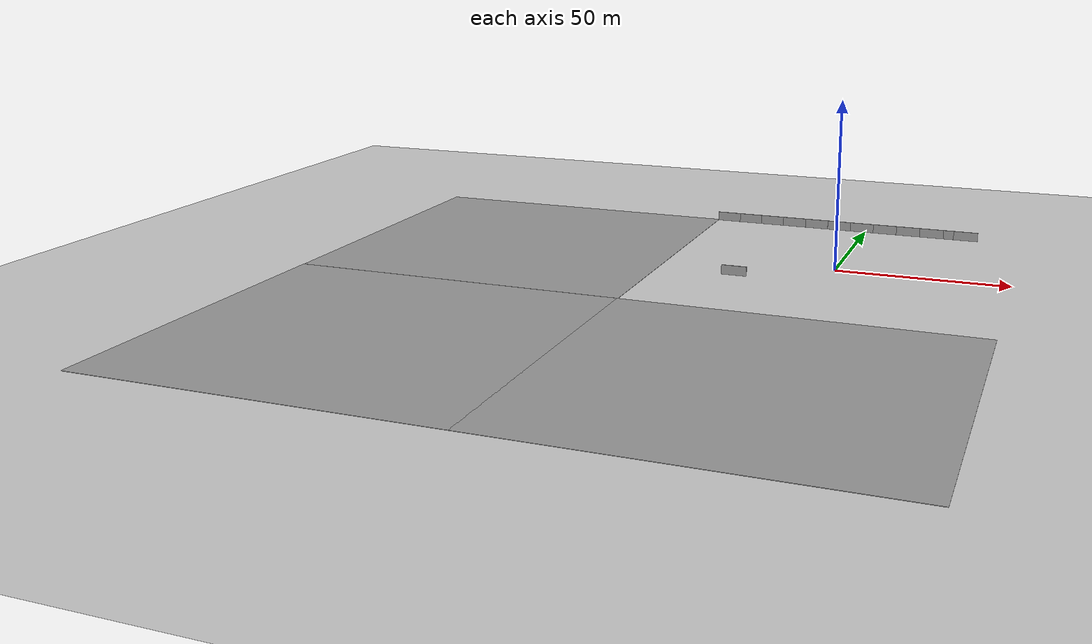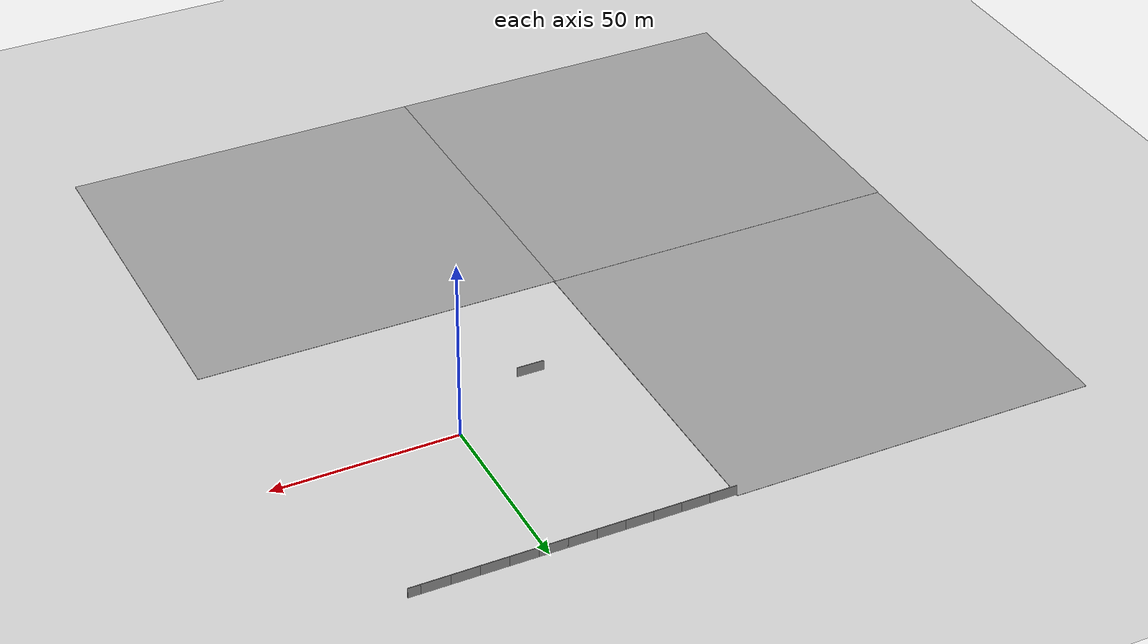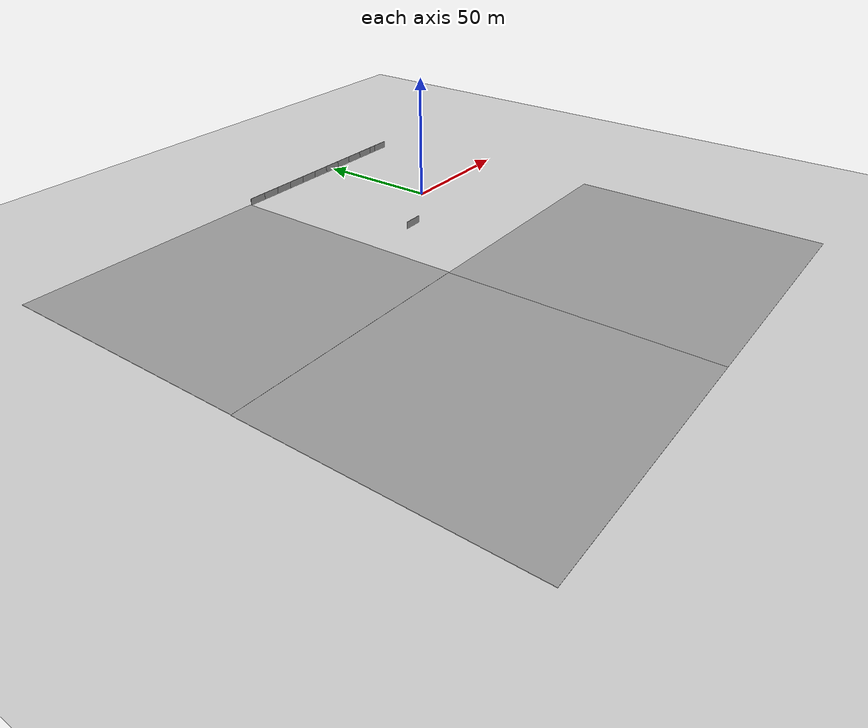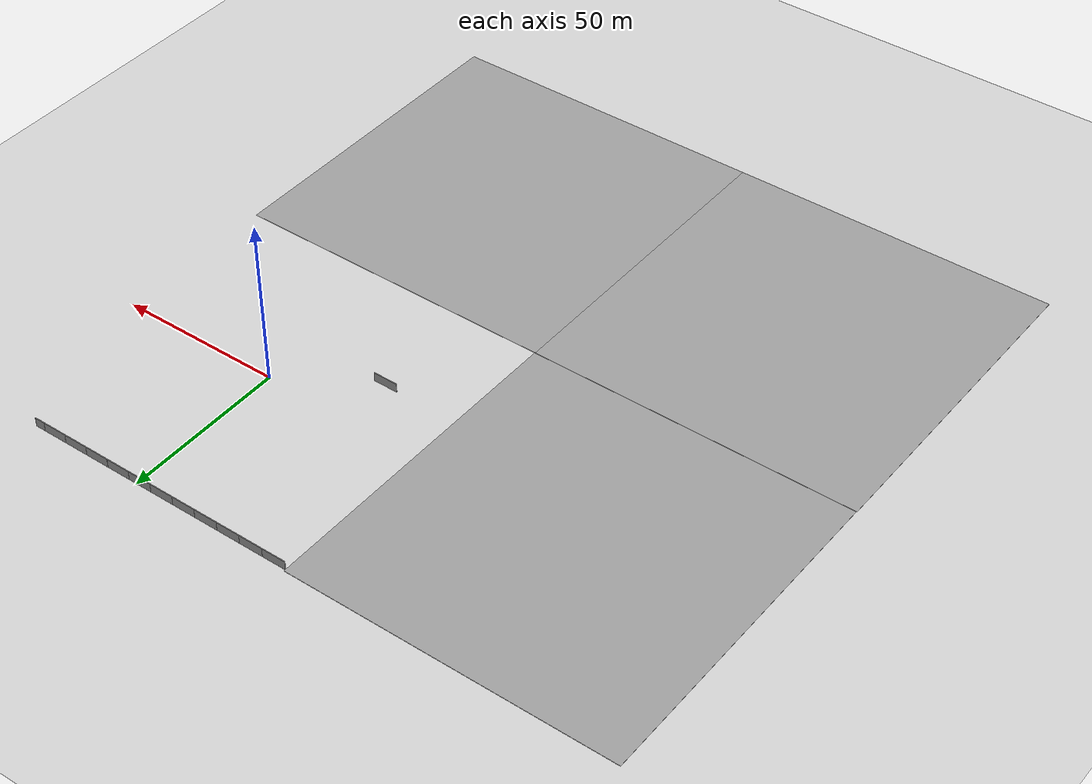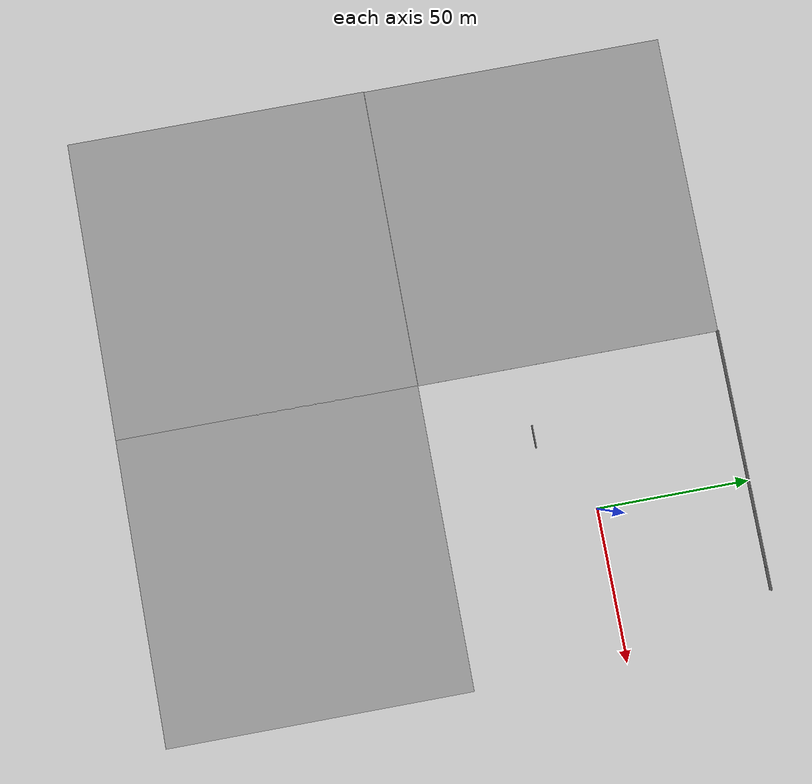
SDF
<sdf version="1.6">
 <world name="default">
  <light name="sun" type="directional">
   <pose>0 0 10 0 -0 0</pose>
   <diffuse>0.8 0.8 0.8 1</diffuse>
   <specular>0.2 0.2 0.2 1</specular>
   <attenuation>
    <range>1000</range>
    <constant>0.9</constant>
    <linear>0.01</linear>
    <quadratic>0.001</quadratic>
   </attenuation>
   <direction>-0.5 0.1 -0.9</direction>
  </light>
  <model name="ground_plane">
   <static>1</static>
   <link name="link">
    <collision name="collision">
     <geometry><plane><normal>0 0 1</normal><size>100 100</size></plane></geometry>
     <surface><friction><ode><mu>100</mu><mu2>50</mu2></ode></friction></surface>
    </collision>
    <visual name="visual">
     <cast_shadows>0</cast_shadows>
     <geometry><plane><normal>0 0 1</normal><size>100 100</size></plane></geometry>
     <material>
      <script><uri>file://media/materials/scripts/gazebo.material</uri><name>Gazebo/Grey</name></script>
     </material>
    </visual>
   </link>
  </model>
  <gravity>0 0 -9.8</gravity>
  <magnetic_field>6e-06 2.3e-05 -4.2e-05</magnetic_field>
  <atmosphere type="adiabatic"/>
  <physics name="default_physics" default="0" type="ode">
   <max_step_size>0.001</max_step_size>
   <real_time_factor>1</real_time_factor>
   <real_time_update_rate>1000</real_time_update_rate>
  </physics>
  <scene><ambient>0.4 0.4 0.4 1</ambient><background>0.7 0.7 0.7 1</background><shadows>1</shadows></scene>
  <spherical_coordinates>
   <surface_model>EARTH_WGS84</surface_model>
   <latitude_deg>0</latitude_deg>
   <longitude_deg>0</longitude_deg>
   <elevation>0</elevation>
   <heading_deg>0</heading_deg>
  </spherical_coordinates>
  <model name="grey_wall">
   <static>1</static>
   <link name="link">
    <pose>0 0 1.4 0 -0 0</pose>
    <collision name="collision"><geometry><box><size>7.5 0.2 2.8</size></box></geometry></collision>
    <visual name="visual">
     <cast_shadows>0</cast_shadows>
     <geometry><box><size>7.5 0.2 2.8</size></box></geometry>
     <material>
      <script>
       <uri>model://grey_wall/materials/scripts</uri>
       <uri>model://grey_wall/materials/textures</uri>
       <name>vrc/grey_wall</name>
      </script>
     </material>
    </visual>
   </link>
   <pose>-26.4741 -15.7944 0 0 -0 0</pose>
  </model>
  <model name="grey_wall_0">
   <static>1</static>
   <link name="link">
    <pose>0 0 1.4 0 -0 0</pose>
    <collision name="collision"><geometry><box><size>7.5 0.2 2.8</size></box></geometry></collision>
    <visual name="visual">
     <cast_shadows>0</cast_shadows>
     <geometry><box><size>7.5 0.2 2.8</size></box></geometry>
     <material>
      <script>
       <uri>model://grey_wall/materials/scripts</uri>
       <uri>model://grey_wall/materials/textures</uri>
       <name>vrc/grey_wall</name>
      </script>
     </material>
    </visual>
   </link>
   <pose>-45.9558 49.6726 0 0 -0 0</pose>
  </model>
  <model name="grey_wall_1">
   <static>1</static>
   <link name="link">
    <pose>0 0 1.4 0 -0 0</pose>
    <collision name="collision"><geometry><box><size>7.5 0.2 2.8</size></box></geometry></collision>
    <visual name="visual">
     <cast_shadows>0</cast_shadows>
     <geometry><box><size>7.5 0.2 2.8</size></box></geometry>
     <material>
      <script>
       <uri>model://grey_wall/materials/scripts</uri>
       <uri>model://grey_wall/materials/textures</uri>
       <name>vrc/grey_wall</name>
      </script>
     </material>
    </visual>
   </link>
   <pose>-38.5175 49.678 0 0 -0 0</pose>
  </model>
  <model name="grey_wall_2">
   <static>1</static>
   <link name="link">
    <pose>0 0 1.4 0 -0 0</pose>
    <collision name="collision"><geometry><box><size>7.5 0.2 2.8</size></box></geometry></collision>
    <visual name="visual">
     <cast_shadows>0</cast_shadows>
     <geometry><box><size>7.5 0.2 2.8</size></box></geometry>
     <material>
      <script>
       <uri>model://grey_wall/materials/scripts</uri>
       <uri>model://grey_wall/materials/textures</uri>
       <name>vrc/grey_wall</name>
      </script>
     </material>
    </visual>
   </link>
   <pose>-31.0624 49.68 0 0 -0 0</pose>
  </model>
  <model name="grey_wall_3">
   <static>1</static>
   <link name="link">
    <pose>0 0 1.4 0 -0 0</pose>
    <collision name="collision"><geometry><box><size>7.5 0.2 2.8</size></box></geometry></collision>
    <visual name="visual">
     <cast_shadows>0</cast_shadows>
     <geometry><box><size>7.5 0.2 2.8</size></box></geometry>
     <material>
      <script>
       <uri>model://grey_wall/materials/scripts</uri>
       <uri>model://grey_wall/materials/textures</uri>
       <name>vrc/grey_wall</name>
      </script>
     </material>
    </visual>
   </link>
   <pose>-23.6008 49.6812 0 0 -0 0</pose>
  </model>
  <model name="grey_wall_4">
   <static>1</static>
   <link name="link">
    <pose>0 0 1.4 0 -0 0</pose>
    <collision name="collision"><geometry><box><size>7.5 0.2 2.8</size></box></geometry></collision>
    <visual name="visual">
     <cast_shadows>0</cast_shadows>
     <geometry><box><size>7.5 0.2 2.8</size></box></geometry>
     <material>
      <script>
       <uri>model://grey_wall/materials/scripts</uri>
       <uri>model://grey_wall/materials/textures</uri>
       <name>vrc/grey_wall</name>
      </script>
     </material>
    </visual>
   </link>
   <pose>-16.1644 49.686 0 0 -0 0</pose>
  </model>
  <model name="grey_wall_5">
   <static>1</static>
   <link name="link">
    <pose>0 0 1.4 0 -0 0</pose>
    <collision name="collision"><geometry><box><size>7.5 0.2 2.8</size></box></geometry></collision>
    <visual name="visual">
     <cast_shadows>0</cast_shadows>
     <geometry><box><size>7.5 0.2 2.8</size></box></geometry>
     <material>
      <script>
       <uri>model://grey_wall/materials/scripts</uri>
       <uri>model://grey_wall/materials/textures</uri>
       <name>vrc/grey_wall</name>
      </script>
     </material>
    </visual>
   </link>
   <pose>-8.67264 49.6886 0 0 -0 0</pose>
  </model>
  <model name="grey_wall_6">
   <static>1</static>
   <link name="link">
    <pose>0 0 1.4 0 -0 0</pose>
    <collision name="collision"><geometry><box><size>7.5 0.2 2.8</size></box></geometry></collision>
    <visual name="visual">
     <cast_shadows>0</cast_shadows>
     <geometry><box><size>7.5 0.2 2.8</size></box></geometry>
     <material>
      <script>
       <uri>model://grey_wall/materials/scripts</uri>
       <uri>model://grey_wall/materials/textures</uri>
       <name>vrc/grey_wall</name>
      </script>
     </material>
    </visual>
   </link>
   <pose>-1.20382 49.6868 0 0 -0 0</pose>
  </model>
  <model name="grey_wall_7">
   <static>1</static>
   <link name="link">
    <pose>0 0 1.4 0 -0 0</pose>
    <collision name="collision"><geometry><box><size>7.5 0.2 2.8</size></box></geometry></collision>
    <visual name="visual">
     <cast_shadows>0</cast_shadows>
     <geometry><box><size>7.5 0.2 2.8</size></box></geometry>
     <material>
      <script>
       <uri>model://grey_wall/materials/scripts</uri>
       <uri>model://grey_wall/materials/textures</uri>
       <name>vrc/grey_wall</name>
      </script>
     </material>
    </visual>
   </link>
   <pose>6.2799 49.6874 0 0 -0 0</pose>
  </model>
  <model name="grey_wall_8">
   <static>1</static>
   <link name="link">
    <pose>0 0 1.4 0 -0 0</pose>
    <collision name="collision"><geometry><box><size>7.5 0.2 2.8</size></box></geometry></collision>
    <visual name="visual">
     <cast_shadows>0</cast_shadows>
     <geometry><box><size>7.5 0.2 2.8</size></box></geometry>
     <material>
      <script>
       <uri>model://grey_wall/materials/scripts</uri>
       <uri>model://grey_wall/materials/textures</uri>
       <name>vrc/grey_wall</name>
      </script>
     </material>
    </visual>
   </link>
   <pose>13.7357 49.6905 0 0 -0 0</pose>
  </model>
  <model name="grey_wall_9">
   <static>1</static>
   <link name="link">
    <pose>0 0 1.4 0 -0 0</pose>
    <collision name="collision"><geometry><box><size>7.5 0.2 2.8</size></box></geometry></collision>
    <visual name="visual">
     <cast_shadows>0</cast_shadows>
     <geometry><box><size>7.5 0.2 2.8</size></box></geometry>
     <material>
      <script>
       <uri>model://grey_wall/materials/scripts</uri>
       <uri>model://grey_wall/materials/textures</uri>
       <name>vrc/grey_wall</name>
      </script>
     </material>
    </visual>
   </link>
   <pose>21.201 49.6918 0 0 -0 0</pose>
  </model>
  <model name="grey_wall_10">
   <static>1</static>
   <link name="link">
    <pose>0 0 1.4 0 -0 0</pose>
    <collision name="collision"><geometry><box><size>7.5 0.2 2.8</size></box></geometry></collision>
    <visual name="visual">
     <cast_shadows>0</cast_shadows>
     <geometry><box><size>7.5 0.2 2.8</size></box></geometry>
     <material>
      <script>
       <uri>model://grey_wall/materials/scripts</uri>
       <uri>model://grey_wall/materials/textures</uri>
       <name>vrc/grey_wall</name>
      </script>
     </material>
    </visual>
   </link>
   <pose>28.6849 49.6924 0 0 -0 0</pose>
  </model>
  <model name="grey_wall_11">
   <static>1</static>
   <link name="link">
    <pose>0 0 1.4 0 -0 0</pose>
    <collision name="collision"><geometry><box><size>7.5 0.2 2.8</size></box></geometry></collision>
    <visual name="visual">
     <cast_shadows>0</cast_shadows>
     <geometry><box><size>7.5 0.2 2.8</size></box></geometry>
     <material>
      <script>
       <uri>model://grey_wall/materials/scripts</uri>
       <uri>model://grey_wall/materials/textures</uri>
       <name>vrc/grey_wall</name>
      </script>
     </material>
    </visual>
   </link>
   <pose>31.899 49.6902 0 0 -0 0</pose>
  </model>
  <model name="ground_plane_0">
   <static>1</static>
   <link name="link">
    <collision name="collision">
     <geometry><plane><normal>0 0 1</normal><size>100 100</size></plane></geometry>
     <surface><friction><ode><mu>100</mu><mu2>50</mu2></ode></friction></surface>
    </collision>
    <visual name="visual">
     <cast_shadows>0</cast_shadows>
     <geometry><plane><normal>0 0 1</normal><size>100 100</size></plane></geometry>
     <material>
      <script><uri>file://media/materials/scripts/gazebo.material</uri><name>Gazebo/Grey</name></script>
     </material>
    </visual>
   </link>
   <pose>0.010648 -99.8258 0 0 -0 0</pose>
  </model>
  <model name="ground_plane_1">
   <static>1</static>
   <link name="link">
    <collision name="collision">
     <geometry><plane><normal>0 0 1</normal><size>100 100</size></plane></geometry>
     <surface><friction><ode><mu>100</mu><mu2>50</mu2></ode></friction></surface>
    </collision>
    <visual name="visual">
     <cast_shadows>0</cast_shadows>
     <geometry><plane><normal>0 0 1</normal><size>100 100</size></plane></geometry>
     <material>
      <script><uri>file://media/materials/scripts/gazebo.material</uri><name>Gazebo/Grey</name></script>
     </material>
    </visual>
   </link>
   <pose>-99.8239 -99.8283 0 0 -0 0</pose>
  </model>
  <model name="ground_plane_2">
   <static>1</static>
   <link name="link">
    <collision name="collision">
     <geometry><plane><normal>0 0 1</normal><size>100 100</size></plane></geometry>
     <surface><friction><ode><mu>100</mu><mu2>50</mu2></ode></friction></surface>
    </collision>
    <visual name="visual">
     <cast_shadows>0</cast_shadows>
     <geometry><plane><normal>0 0 1</normal><size>100 100</size></plane></geometry>
     <material>
      <script><uri>file://media/materials/scripts/gazebo.material</uri><name>Gazebo/Grey</name></script>
     </material>
    </visual>
   </link>
   <pose>-99.6695 0.227731 0 0 -0 0</pose>
  </model>
 </world>
</sdf>
